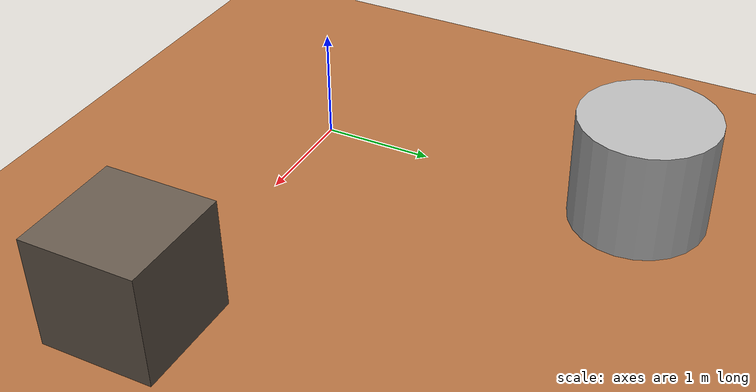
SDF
<?xml version="1.0"?>
<sdf version="1.9"><world name="mars_yard">
  <!-- Earth gravity for testing a terrestrial scale rover. -->
  <gravity>0 0 -9.81</gravity>
  <physics name="physics" type="ignored"><max_step_size>0.001</max_step_size><real_time_factor>1</real_time_factor></physics>
  <plugin filename="gz-sim-physics-system" name="gz::sim::systems::Physics"/>
  <plugin filename="gz-sim-user-commands-system" name="gz::sim::systems::UserCommands"/>
  <plugin filename="gz-sim-scene-broadcaster-system" name="gz::sim::systems::SceneBroadcaster"/>
  <plugin filename="gz-sim-sensors-system" name="gz::sim::systems::Sensors"><render_engine>ogre2</render_engine></plugin>
  <scene><ambient>0.6 0.6 0.6 1</ambient><background>0.65 0.48 0.35 1</background><shadows>true</shadows></scene>
  <light name="sun" type="directional"><pose>0 0 10 0 0 0</pose><diffuse>0.9 0.85 0.8 1</diffuse><specular>0.2 0.2 0.2 1</specular><direction>-0.5 0.2 -1</direction></light>
  <model name="ground"><static>true</static><link name="link">
    <collision name="collision"><geometry><plane><normal>0 0 1</normal><size>40 40</size></plane></geometry></collision>
    <visual name="visual"><geometry><plane><normal>0 0 1</normal><size>40 40</size></plane></geometry><material><ambient>0.6 0.36 0.2 1</ambient><diffuse>0.7 0.44 0.25 1</diffuse></material></visual>
  </link></model>
  <model name="front_obstacle"><static>true</static><pose>3 0 0.5 0 0 0</pose><link name="link">
    <collision name="collision"><geometry><box><size>1 1 1</size></box></geometry></collision>
    <visual name="visual"><geometry><box><size>1 1 1</size></box></geometry><material><diffuse>0.4 0.35 0.3 1</diffuse></material></visual>
  </link></model>
  <model name="side_rock"><static>true</static><pose>0 3 0.5 0 0 0</pose><link name="link">
    <collision name="collision"><geometry><cylinder><radius>0.6</radius><length>1</length></cylinder></geometry></collision>
    <visual name="visual"><geometry><cylinder><radius>0.6</radius><length>1</length></cylinder></geometry></visual>
  </link></model>
</world></sdf>
